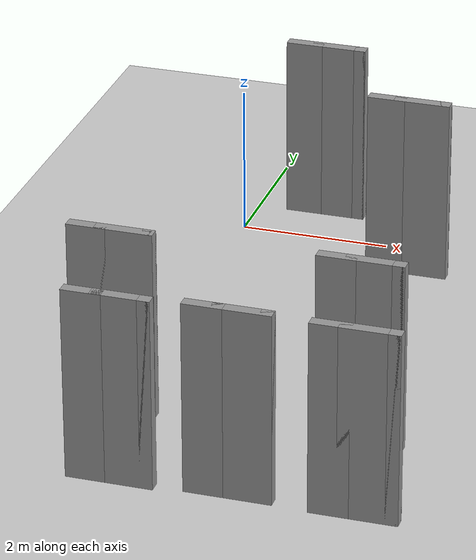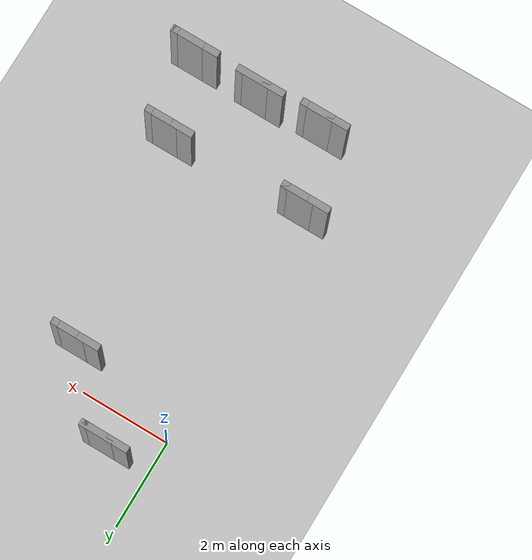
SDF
<sdf version="1.7">
 <world name="default">
  <model name="ground_plane">
   <static>1</static>
   <link name="link">
    <collision name="collision">
     <geometry><plane><normal>0 0 1</normal><size>100 100</size></plane></geometry>
     <surface><friction><ode><mu>100</mu><mu2>50</mu2></ode></friction></surface>
    </collision>
    <visual name="visual">
     <cast_shadows>0</cast_shadows>
     <geometry><plane><normal>0 0 1</normal><size>100 100</size></plane></geometry>
     <material>
      <script><uri>file://media/materials/scripts/gazebo.material</uri><name>Gazebo/Grey</name></script>
     </material>
    </visual>
   </link>
  </model>
  <model name="block">
   <pose>1.09728 1.59371 0 0 -0 0</pose>
   <link name="Wall_0">
    <collision name="Wall_0_Collision">
     <geometry><box><size>0.16 0.15 2.5</size></box></geometry>
     <pose>0 0 1.25 0 -0 0</pose>
    </collision>
    <visual name="Wall_0_Visual">
     <pose>0 0 1.25 0 -0 0</pose>
     <geometry><box><size>0.16 0.15 2.5</size></box></geometry>
     <material>
      <script><uri>file://media/materials/scripts/gazebo.material</uri><name>Gazebo/Grey</name></script>
      <ambient>1 1 1 1</ambient>
     </material>
     <meta><layer>0</layer></meta>
    </visual>
    <pose>0.3025 -0.8175 0 0 -0 0</pose>
   </link>
   <link name="Wall_1">
    <collision name="Wall_1_Collision">
     <geometry><box><size>0.75 0.15 2.5</size></box></geometry>
     <pose>0 0 1.25 0 -0 0</pose>
    </collision>
    <visual name="Wall_1_Visual">
     <pose>0 0 1.25 0 -0 0</pose>
     <geometry><box><size>0.75 0.15 2.5</size></box></geometry>
     <material>
      <script><uri>file://media/materials/scripts/gazebo.material</uri><name>Gazebo/Grey</name></script>
      <ambient>1 1 1 1</ambient>
     </material>
     <meta><layer>0</layer></meta>
    </visual>
    <pose>0.0075 -0.8175 0 0 -0 3.14159</pose>
   </link>
   <link name="Wall_2">
    <collision name="Wall_2_Collision">
     <geometry><box><size>0.5 0.15 2.5</size></box></geometry>
     <pose>0 0 1.25 0 -0 0</pose>
    </collision>
    <visual name="Wall_2_Visual">
     <pose>0 0 1.25 0 -0 0</pose>
     <geometry><box><size>0.5 0.15 2.5</size></box></geometry>
     <material>
      <script><uri>file://media/materials/scripts/gazebo.material</uri><name>Gazebo/Grey</name></script>
      <ambient>1 1 1 1</ambient>
     </material>
     <meta><layer>0</layer></meta>
    </visual>
    <pose>-0.4675 -0.8175 0 0 -0 3.14159</pose>
   </link>
   <static>1</static>
  </model>
  <model name="block_clone_0">
   <pose>2.63152 0.16905 0 0 -0 0</pose>
   <link name="Wall_0">
    <collision name="Wall_0_Collision">
     <geometry><box><size>0.16 0.15 2.5</size></box></geometry>
     <pose>0 0 1.25 0 -0 0</pose>
    </collision>
    <visual name="Wall_0_Visual">
     <pose>0 0 1.25 0 -0 0</pose>
     <geometry><box><size>0.16 0.15 2.5</size></box></geometry>
     <material>
      <script><uri>file://media/materials/scripts/gazebo.material</uri><name>Gazebo/Grey</name></script>
      <ambient>1 1 1 1</ambient>
     </material>
     <meta><layer>0</layer></meta>
    </visual>
    <pose>0.3025 -0.8175 0 0 -0 0</pose>
   </link>
   <link name="Wall_1">
    <collision name="Wall_1_Collision">
     <geometry><box><size>0.75 0.15 2.5</size></box></geometry>
     <pose>0 0 1.25 0 -0 0</pose>
    </collision>
    <visual name="Wall_1_Visual">
     <pose>0 0 1.25 0 -0 0</pose>
     <geometry><box><size>0.75 0.15 2.5</size></box></geometry>
     <material>
      <script><uri>file://media/materials/scripts/gazebo.material</uri><name>Gazebo/Grey</name></script>
      <ambient>1 1 1 1</ambient>
     </material>
     <meta><layer>0</layer></meta>
    </visual>
    <pose>0.0075 -0.8175 0 0 -0 3.14159</pose>
   </link>
   <link name="Wall_2">
    <collision name="Wall_2_Collision">
     <geometry><box><size>0.5 0.15 2.5</size></box></geometry>
     <pose>0 0 1.25 0 -0 0</pose>
    </collision>
    <visual name="Wall_2_Visual">
     <pose>0 0 1.25 0 -0 0</pose>
     <geometry><box><size>0.5 0.15 2.5</size></box></geometry>
     <material>
      <script><uri>file://media/materials/scripts/gazebo.material</uri><name>Gazebo/Grey</name></script>
      <ambient>1 1 1 1</ambient>
     </material>
     <meta><layer>0</layer></meta>
    </visual>
    <pose>-0.4675 -0.8175 0 0 -0 3.14159</pose>
   </link>
   <static>1</static>
  </model>
  <model name="block_clone_2">
   <pose>0.713977 -6.18413 0 0 -0 0</pose>
   <link name="Wall_0">
    <collision name="Wall_0_Collision">
     <geometry><box><size>0.16 0.15 2.5</size></box></geometry>
     <pose>0 0 1.25 0 -0 0</pose>
    </collision>
    <visual name="Wall_0_Visual">
     <pose>0 0 1.25 0 -0 0</pose>
     <geometry><box><size>0.16 0.15 2.5</size></box></geometry>
     <material>
      <script><uri>file://media/materials/scripts/gazebo.material</uri><name>Gazebo/Grey</name></script>
      <ambient>1 1 1 1</ambient>
     </material>
     <meta><layer>0</layer></meta>
    </visual>
    <pose>0.3025 -0.8175 0 0 -0 0</pose>
   </link>
   <link name="Wall_1">
    <collision name="Wall_1_Collision">
     <geometry><box><size>0.75 0.15 2.5</size></box></geometry>
     <pose>0 0 1.25 0 -0 0</pose>
    </collision>
    <visual name="Wall_1_Visual">
     <pose>0 0 1.25 0 -0 0</pose>
     <geometry><box><size>0.75 0.15 2.5</size></box></geometry>
     <material>
      <script><uri>file://media/materials/scripts/gazebo.material</uri><name>Gazebo/Grey</name></script>
      <ambient>1 1 1 1</ambient>
     </material>
     <meta><layer>0</layer></meta>
    </visual>
    <pose>0.0075 -0.8175 0 0 -0 3.14159</pose>
   </link>
   <link name="Wall_2">
    <collision name="Wall_2_Collision">
     <geometry><box><size>0.5 0.15 2.5</size></box></geometry>
     <pose>0 0 1.25 0 -0 0</pose>
    </collision>
    <visual name="Wall_2_Visual">
     <pose>0 0 1.25 0 -0 0</pose>
     <geometry><box><size>0.5 0.15 2.5</size></box></geometry>
     <material>
      <script><uri>file://media/materials/scripts/gazebo.material</uri><name>Gazebo/Grey</name></script>
      <ambient>1 1 1 1</ambient>
     </material>
     <meta><layer>0</layer></meta>
    </visual>
    <pose>-0.4675 -0.8175 0 0 -0 3.14159</pose>
   </link>
   <static>1</static>
  </model>
  <model name="block_clone_3">
   <pose>2.1633 -6.10739 0 0 -0 0</pose>
   <link name="Wall_0">
    <collision name="Wall_0_Collision">
     <geometry><box><size>0.16 0.15 2.5</size></box></geometry>
     <pose>0 0 1.25 0 -0 0</pose>
    </collision>
    <visual name="Wall_0_Visual">
     <pose>0 0 1.25 0 -0 0</pose>
     <geometry><box><size>0.16 0.15 2.5</size></box></geometry>
     <material>
      <script><uri>file://media/materials/scripts/gazebo.material</uri><name>Gazebo/Grey</name></script>
      <ambient>1 1 1 1</ambient>
     </material>
     <meta><layer>0</layer></meta>
    </visual>
    <pose>0.3025 -0.8175 0 0 -0 0</pose>
   </link>
   <link name="Wall_1">
    <collision name="Wall_1_Collision">
     <geometry><box><size>0.75 0.15 2.5</size></box></geometry>
     <pose>0 0 1.25 0 -0 0</pose>
    </collision>
    <visual name="Wall_1_Visual">
     <pose>0 0 1.25 0 -0 0</pose>
     <geometry><box><size>0.75 0.15 2.5</size></box></geometry>
     <material>
      <script><uri>file://media/materials/scripts/gazebo.material</uri><name>Gazebo/Grey</name></script>
      <ambient>1 1 1 1</ambient>
     </material>
     <meta><layer>0</layer></meta>
    </visual>
    <pose>0.0075 -0.8175 0 0 -0 3.14159</pose>
   </link>
   <link name="Wall_2">
    <collision name="Wall_2_Collision">
     <geometry><box><size>0.5 0.15 2.5</size></box></geometry>
     <pose>0 0 1.25 0 -0 0</pose>
    </collision>
    <visual name="Wall_2_Visual">
     <pose>0 0 1.25 0 -0 0</pose>
     <geometry><box><size>0.5 0.15 2.5</size></box></geometry>
     <material>
      <script><uri>file://media/materials/scripts/gazebo.material</uri><name>Gazebo/Grey</name></script>
      <ambient>1 1 1 1</ambient>
     </material>
     <meta><layer>0</layer></meta>
    </visual>
    <pose>-0.4675 -0.8175 0 0 -0 3.14159</pose>
   </link>
   <static>1</static>
  </model>
  <model name="block_clone_4">
   <pose>3.70572 -6.13241 0 0 -0 0</pose>
   <link name="Wall_0">
    <collision name="Wall_0_Collision">
     <geometry><box><size>0.16 0.15 2.5</size></box></geometry>
     <pose>0 0 1.25 0 -0 0</pose>
    </collision>
    <visual name="Wall_0_Visual">
     <pose>0 0 1.25 0 -0 0</pose>
     <geometry><box><size>0.16 0.15 2.5</size></box></geometry>
     <material>
      <script><uri>file://media/materials/scripts/gazebo.material</uri><name>Gazebo/Grey</name></script>
      <ambient>1 1 1 1</ambient>
     </material>
     <meta><layer>0</layer></meta>
    </visual>
    <pose>0.3025 -0.8175 0 0 -0 0</pose>
   </link>
   <link name="Wall_1">
    <collision name="Wall_1_Collision">
     <geometry><box><size>0.75 0.15 2.5</size></box></geometry>
     <pose>0 0 1.25 0 -0 0</pose>
    </collision>
    <visual name="Wall_1_Visual">
     <pose>0 0 1.25 0 -0 0</pose>
     <geometry><box><size>0.75 0.15 2.5</size></box></geometry>
     <material>
      <script><uri>file://media/materials/scripts/gazebo.material</uri><name>Gazebo/Grey</name></script>
      <ambient>1 1 1 1</ambient>
     </material>
     <meta><layer>0</layer></meta>
    </visual>
    <pose>0.0075 -0.8175 0 0 -0 3.14159</pose>
   </link>
   <link name="Wall_2">
    <collision name="Wall_2_Collision">
     <geometry><box><size>0.5 0.15 2.5</size></box></geometry>
     <pose>0 0 1.25 0 -0 0</pose>
    </collision>
    <visual name="Wall_2_Visual">
     <pose>0 0 1.25 0 -0 0</pose>
     <geometry><box><size>0.5 0.15 2.5</size></box></geometry>
     <material>
      <script><uri>file://media/materials/scripts/gazebo.material</uri><name>Gazebo/Grey</name></script>
      <ambient>1 1 1 1</ambient>
     </material>
     <meta><layer>0</layer></meta>
    </visual>
    <pose>-0.4675 -0.8175 0 0 -0 3.14159</pose>
   </link>
   <static>1</static>
  </model>
  <model name="block_clone_5">
   <pose>0.178818 -4.53939 0 0 -0 0</pose>
   <link name="Wall_0">
    <collision name="Wall_0_Collision">
     <geometry><box><size>0.16 0.15 2.5</size></box></geometry>
     <pose>0 0 1.25 0 -0 0</pose>
    </collision>
    <visual name="Wall_0_Visual">
     <pose>0 0 1.25 0 -0 0</pose>
     <geometry><box><size>0.16 0.15 2.5</size></box></geometry>
     <material>
      <script><uri>file://media/materials/scripts/gazebo.material</uri><name>Gazebo/Grey</name></script>
      <ambient>1 1 1 1</ambient>
     </material>
     <meta><layer>0</layer></meta>
    </visual>
    <pose>0.3025 -0.8175 0 0 -0 0</pose>
   </link>
   <link name="Wall_1">
    <collision name="Wall_1_Collision">
     <geometry><box><size>0.75 0.15 2.5</size></box></geometry>
     <pose>0 0 1.25 0 -0 0</pose>
    </collision>
    <visual name="Wall_1_Visual">
     <pose>0 0 1.25 0 -0 0</pose>
     <geometry><box><size>0.75 0.15 2.5</size></box></geometry>
     <material>
      <script><uri>file://media/materials/scripts/gazebo.material</uri><name>Gazebo/Grey</name></script>
      <ambient>1 1 1 1</ambient>
     </material>
     <meta><layer>0</layer></meta>
    </visual>
    <pose>0.0075 -0.8175 0 0 -0 3.14159</pose>
   </link>
   <link name="Wall_2">
    <collision name="Wall_2_Collision">
     <geometry><box><size>0.5 0.15 2.5</size></box></geometry>
     <pose>0 0 1.25 0 -0 0</pose>
    </collision>
    <visual name="Wall_2_Visual">
     <pose>0 0 1.25 0 -0 0</pose>
     <geometry><box><size>0.5 0.15 2.5</size></box></geometry>
     <material>
      <script><uri>file://media/materials/scripts/gazebo.material</uri><name>Gazebo/Grey</name></script>
      <ambient>1 1 1 1</ambient>
     </material>
     <meta><layer>0</layer></meta>
    </visual>
    <pose>-0.4675 -0.8175 0 0 -0 3.14159</pose>
   </link>
   <static>1</static>
  </model>
  <model name="block_clone_8">
   <pose>3.29331 -4.45571 0 0 -0 0</pose>
   <link name="Wall_0">
    <collision name="Wall_0_Collision">
     <geometry><box><size>0.16 0.15 2.5</size></box></geometry>
     <pose>0 0 1.25 0 -0 0</pose>
    </collision>
    <visual name="Wall_0_Visual">
     <pose>0 0 1.25 0 -0 0</pose>
     <geometry><box><size>0.16 0.15 2.5</size></box></geometry>
     <material>
      <script><uri>file://media/materials/scripts/gazebo.material</uri><name>Gazebo/Grey</name></script>
      <ambient>1 1 1 1</ambient>
     </material>
     <meta><layer>0</layer></meta>
    </visual>
    <pose>0.3025 -0.8175 0 0 -0 0</pose>
   </link>
   <link name="Wall_1">
    <collision name="Wall_1_Collision">
     <geometry><box><size>0.75 0.15 2.5</size></box></geometry>
     <pose>0 0 1.25 0 -0 0</pose>
    </collision>
    <visual name="Wall_1_Visual">
     <pose>0 0 1.25 0 -0 0</pose>
     <geometry><box><size>0.75 0.15 2.5</size></box></geometry>
     <material>
      <script><uri>file://media/materials/scripts/gazebo.material</uri><name>Gazebo/Grey</name></script>
      <ambient>1 1 1 1</ambient>
     </material>
     <meta><layer>0</layer></meta>
    </visual>
    <pose>0.0075 -0.8175 0 0 -0 3.14159</pose>
   </link>
   <link name="Wall_2">
    <collision name="Wall_2_Collision">
     <geometry><box><size>0.5 0.15 2.5</size></box></geometry>
     <pose>0 0 1.25 0 -0 0</pose>
    </collision>
    <visual name="Wall_2_Visual">
     <pose>0 0 1.25 0 -0 0</pose>
     <geometry><box><size>0.5 0.15 2.5</size></box></geometry>
     <material>
      <script><uri>file://media/materials/scripts/gazebo.material</uri><name>Gazebo/Grey</name></script>
      <ambient>1 1 1 1</ambient>
     </material>
     <meta><layer>0</layer></meta>
    </visual>
    <pose>-0.4675 -0.8175 0 0 -0 3.14159</pose>
   </link>
   <static>1</static>
  </model>
 </world>
</sdf>
